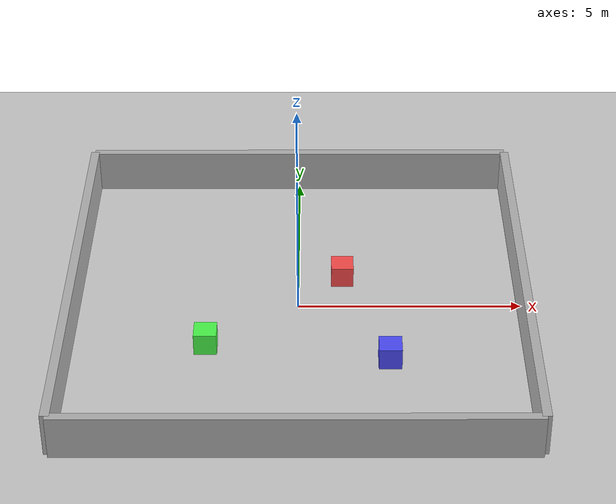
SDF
<?xml version="1.0" ?>
<sdf version="1.8">
  <world name="default">

    <physics name="1ms" type="ignored">
      <max_step_size>0.001</max_step_size>
      <real_time_factor>1.0</real_time_factor>
    </physics>

    <!-- Required system plugins -->
    <plugin filename="gz-sim-physics-system"
            name="gz::sim::systems::Physics"/>
    <plugin filename="gz-sim-user-commands-system"
            name="gz::sim::systems::UserCommands"/>
    <plugin filename="gz-sim-scene-broadcaster-system"
            name="gz::sim::systems::SceneBroadcaster"/>

    <!-- Needed for lidar and RGBD camera to work -->
    <plugin filename="gz-sim-sensors-system"
            name="gz::sim::systems::Sensors">
      <render_engine>ogre2</render_engine>
    </plugin>

    <!-- Sun -->
    <light type="directional" name="sun">
      <cast_shadows>true</cast_shadows>
      <pose>0 0 10 0 0 0</pose>
      <diffuse>0.8 0.8 0.8 1</diffuse>
      <specular>0.2 0.2 0.2 1</specular>
      <attenuation>
        <range>1000</range>
        <constant>0.9</constant>
        <linear>0.01</linear>
        <quadratic>0.001</quadratic>
      </attenuation>
      <direction>-0.5 0.1 -0.9</direction>
    </light>

    <!-- Ground plane -->
    <model name="ground_plane">
      <static>true</static>
      <link name="link">
        <collision name="collision">
          <geometry>
            <plane>
              <normal>0 0 1</normal>
            </plane>
          </geometry>
        </collision>
        <visual name="visual">
          <geometry>
            <plane>
              <normal>0 0 1</normal>
              <size>100 100</size>
            </plane>
          </geometry>
          <material>
            <ambient>0.8 0.8 0.8 1</ambient>
            <diffuse>0.8 0.8 0.8 1</diffuse>
            <specular>0.8 0.8 0.8 1</specular>
          </material>
        </visual>
      </link>
    </model>

    <!-- Arena Walls for LiDAR testing -->
    <!-- North wall -->
    <model name="wall_north">
      <static>true</static>
      <pose>0 5 0.5 0 0 0</pose>
      <link name="link">
        <collision name="collision">
          <geometry>
            <box>
              <size>10 0.2 1</size>
            </box>
          </geometry>
        </collision>
        <visual name="visual">
          <geometry>
            <box>
              <size>10 0.2 1</size>
            </box>
          </geometry>
          <material>
            <ambient>0.5 0.5 0.5 1</ambient>
            <diffuse>0.7 0.7 0.7 1</diffuse>
            <specular>0.5 0.5 0.5 1</specular>
          </material>
        </visual>
      </link>
    </model>

    <!-- South wall -->
    <model name="wall_south">
      <static>true</static>
      <pose>0 -5 0.5 0 0 0</pose>
      <link name="link">
        <collision name="collision">
          <geometry>
            <box>
              <size>10 0.2 1</size>
            </box>
          </geometry>
        </collision>
        <visual name="visual">
          <geometry>
            <box>
              <size>10 0.2 1</size>
            </box>
          </geometry>
          <material>
            <ambient>0.5 0.5 0.5 1</ambient>
            <diffuse>0.7 0.7 0.7 1</diffuse>
            <specular>0.5 0.5 0.5 1</specular>
          </material>
        </visual>
      </link>
    </model>

    <!-- East wall -->
    <model name="wall_east">
      <static>true</static>
      <pose>5 0 0.5 0 0 0</pose>
      <link name="link">
        <collision name="collision">
          <geometry>
            <box>
              <size>0.2 10 1</size>
            </box>
          </geometry>
        </collision>
        <visual name="visual">
          <geometry>
            <box>
              <size>0.2 10 1</size>
            </box>
          </geometry>
          <material>
            <ambient>0.5 0.5 0.5 1</ambient>
            <diffuse>0.7 0.7 0.7 1</diffuse>
            <specular>0.5 0.5 0.5 1</specular>
          </material>
        </visual>
      </link>
    </model>

    <!-- West wall -->
    <model name="wall_west">
      <static>true</static>
      <pose>-5 0 0.5 0 0 0</pose>
      <link name="link">
        <collision name="collision">
          <geometry>
            <box>
              <size>0.2 10 1</size>
            </box>
          </geometry>
        </collision>
        <visual name="visual">
          <geometry>
            <box>
              <size>0.2 10 1</size>
            </box>
          </geometry>
          <material>
            <ambient>0.5 0.5 0.5 1</ambient>
            <diffuse>0.7 0.7 0.7 1</diffuse>
            <specular>0.5 0.5 0.5 1</specular>
          </material>
        </visual>
      </link>
    </model>

    <!-- Center obstacle 1 -->
    <model name="obstacle_1">
      <static>true</static>
      <pose>1 1 0.25 0 0 0</pose>
      <link name="link">
        <collision name="collision">
          <geometry>
            <box>
              <size>0.5 0.5 0.5</size>
            </box>
          </geometry>
        </collision>
        <visual name="visual">
          <geometry>
            <box>
              <size>0.5 0.5 0.5</size>
            </box>
          </geometry>
          <material>
            <ambient>0.8 0.2 0.2 1</ambient>
            <diffuse>1.0 0.3 0.3 1</diffuse>
            <specular>0.5 0.5 0.5 1</specular>
          </material>
        </visual>
      </link>
    </model>

    <!-- Center obstacle 2 -->
    <model name="obstacle_2">
      <static>true</static>
      <pose>-2 -1.5 0.25 0 0 0</pose>
      <link name="link">
        <collision name="collision">
          <geometry>
            <box>
              <size>0.5 0.5 0.5</size>
            </box>
          </geometry>
        </collision>
        <visual name="visual">
          <geometry>
            <box>
              <size>0.5 0.5 0.5</size>
            </box>
          </geometry>
          <material>
            <ambient>0.2 0.8 0.2 1</ambient>
            <diffuse>0.3 1.0 0.3 1</diffuse>
            <specular>0.5 0.5 0.5 1</specular>
          </material>
        </visual>
      </link>
    </model>

    <!-- Center obstacle 3 -->
    <model name="obstacle_3">
      <static>true</static>
      <pose>2 -2 0.25 0 0 0</pose>
      <link name="link">
        <collision name="collision">
          <geometry>
            <box>
              <size>0.5 0.5 0.5</size>
            </box>
          </geometry>
        </collision>
        <visual name="visual">
          <geometry>
            <box>
              <size>0.5 0.5 0.5</size>
            </box>
          </geometry>
          <material>
            <ambient>0.2 0.2 0.8 1</ambient>
            <diffuse>0.3 0.3 1.0 1</diffuse>
            <specular>0.5 0.5 0.5 1</specular>
          </material>
        </visual>
      </link>
    </model>

  </world>
</sdf>
